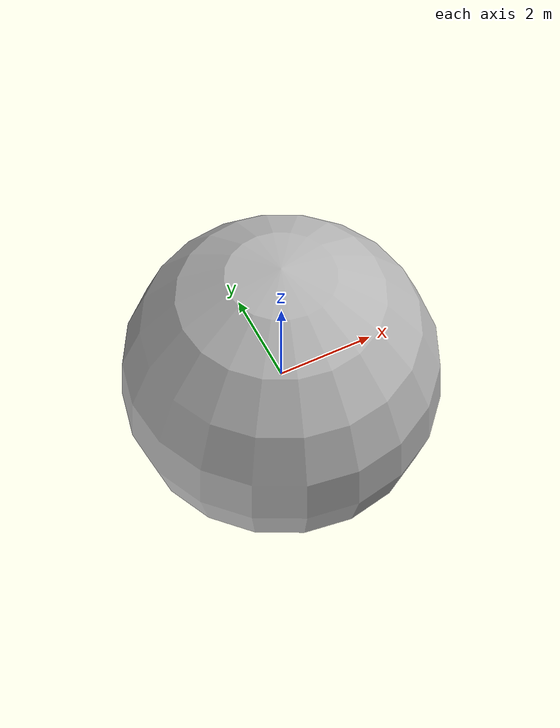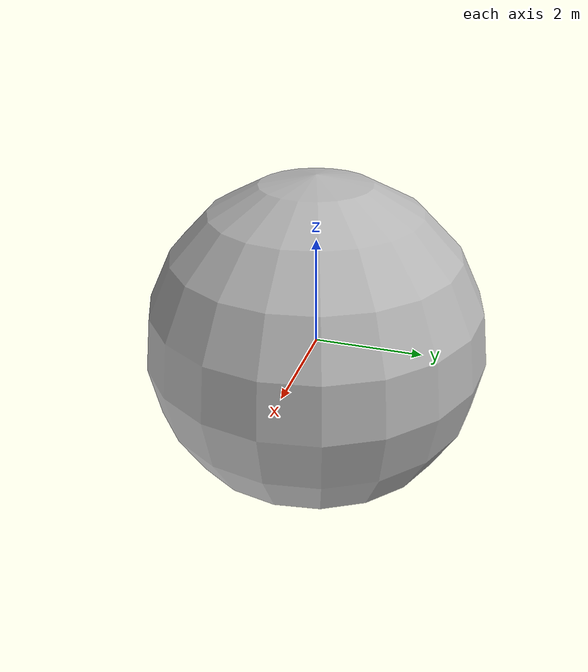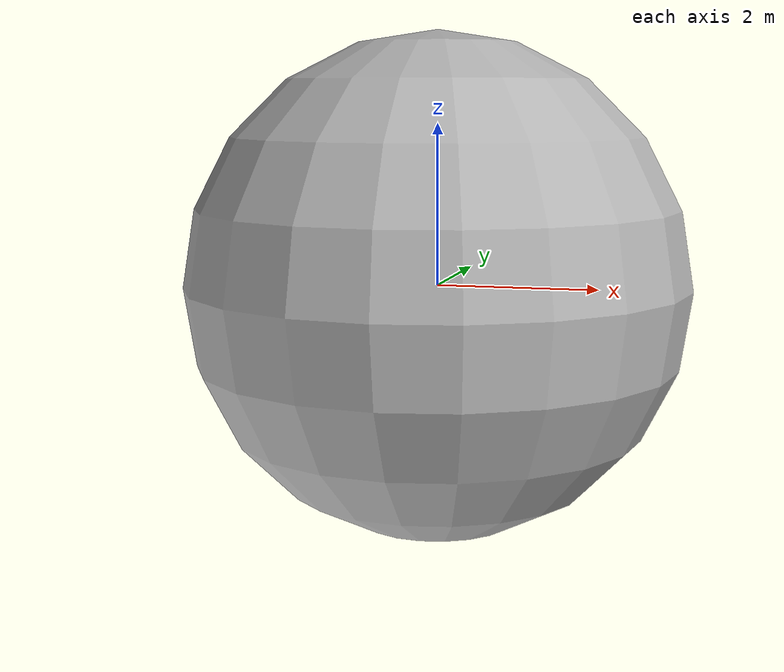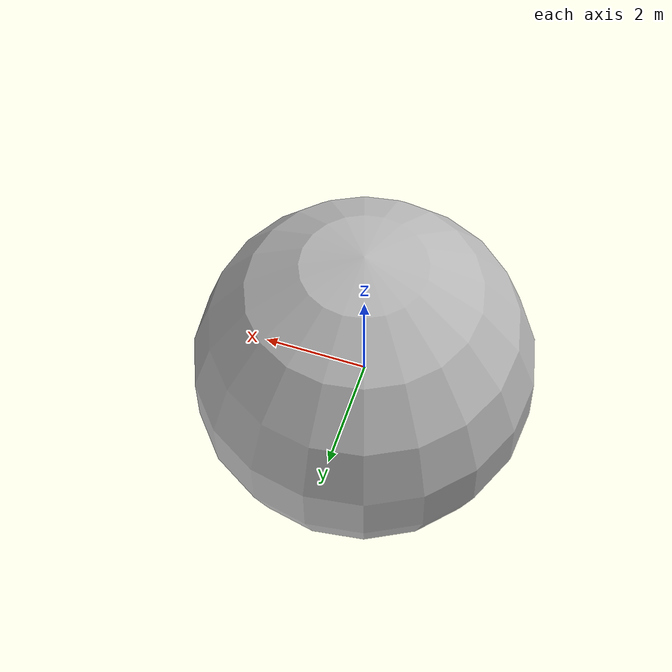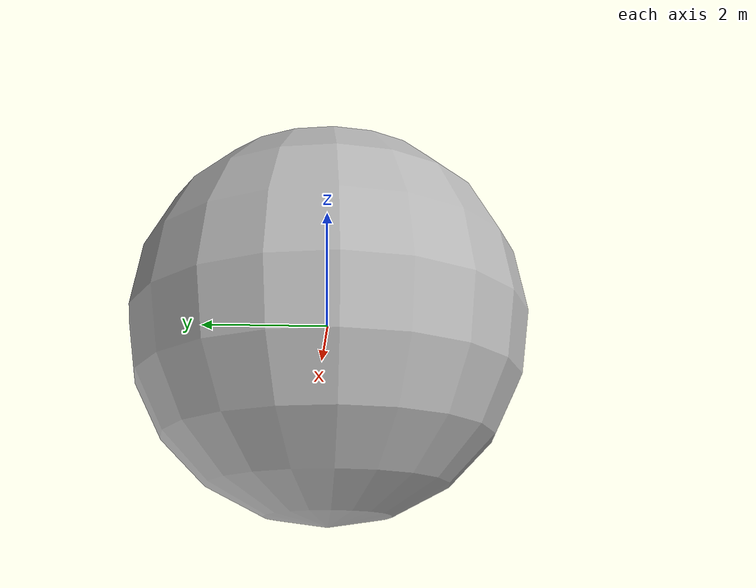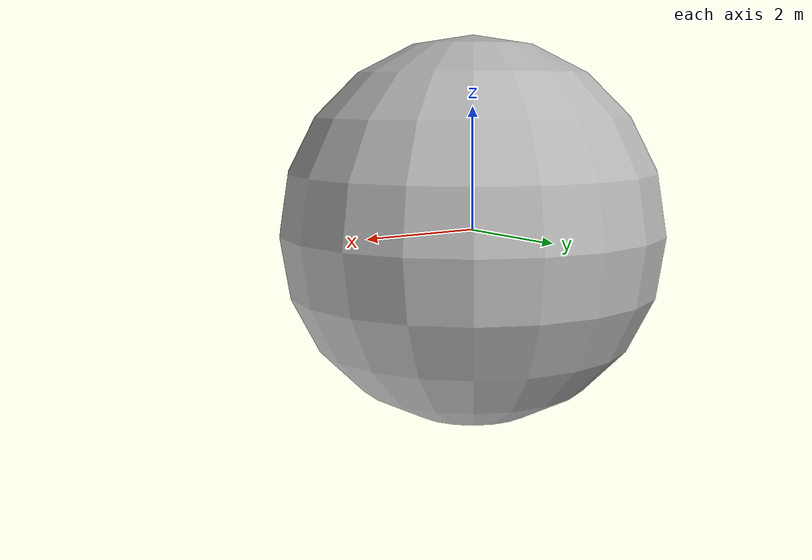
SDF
<?xml version="1.0" ?>
<!-- |    This document was autogenerated by xacro from /home/user/dev_ws/src/skbot/skbot_gazebo/models/test/test.sdf.xacro | -->
<!-- |    EDITING THIS FILE BY HAND IS NOT RECOMMENDED                                 | -->
<sdf version="1.7">
  <model name="test">
    <link name="link_00">
      <visual name="visual_00">
        <geometry>
          <sphere>
            <radius>3.14</radius>
          </sphere>
        </geometry>
      </visual>
    </link>
  </model>
</sdf>
